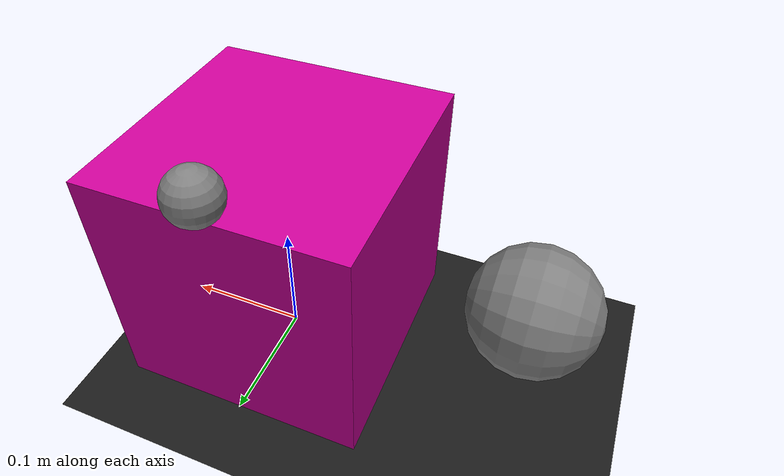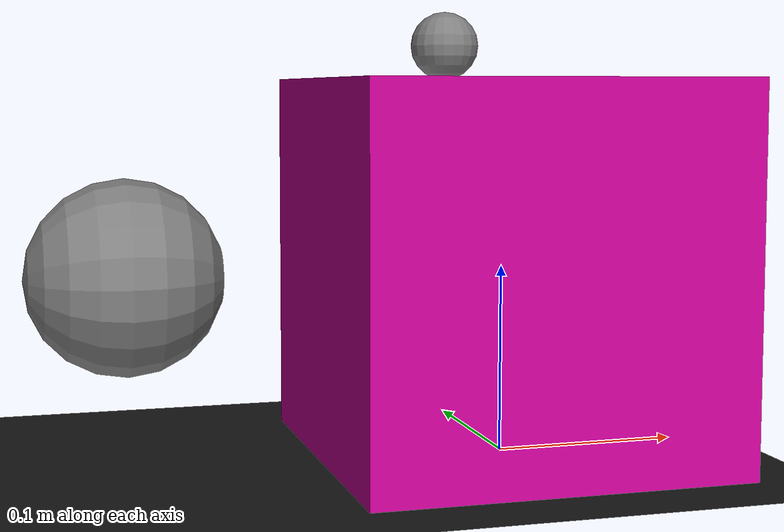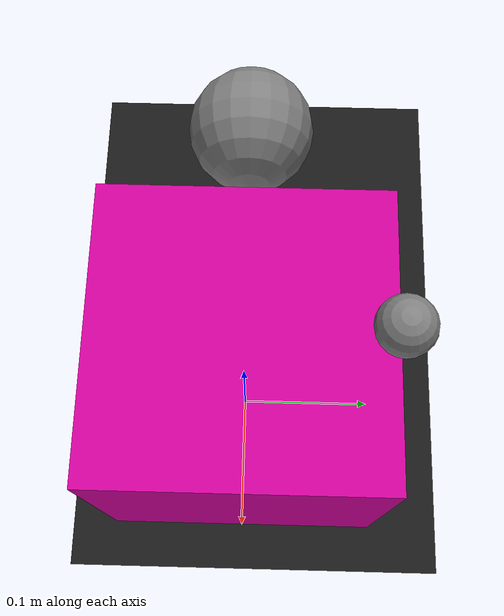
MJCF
<mujoco>

   <option integrator="RK4" timestep="0.001" >
   </option>
   <worldbody>
      <light diffuse=".5 .5 .5" pos="0 0 3" dir="0 0 -1"/>
      <geom type="plane" size="1 1 0.1" rgba=".1 .1 .1 1" friction="1.0 0.005 0001"/>
      <body name="box" pos="0 0 0.1">
         <freejoint name="box"/>
         <geom name="box" type="box" size=".1 .1 .1" rgba=".8 0 .6 1" friction = "1.0 0.005 0001" mass="1.5"/>
         <body name="com_offset" pos="0.0 0.1 0.12">
            <geom name="offset_mass" type="sphere" size="0.02" mass="1.0"/>
         </body>
      </body>
      <body name="pusher" pos="-0.2 0.0 0.1">
         <joint name="pusher_x" type="slide" axis="1 0 0" damping="0.0"/>
         <joint name="pusher_y" type="slide" axis="0 1 0" damping="0.0"/>
         <geom name="pusher" type="sphere" size="0.05" pos="0 0 0" euler="0.0 -90.0 0" friction="1.0 0.005 0001"/>
      </body>
   </worldbody>
   <actuator>
      <general name="push_velocity" joint="box"/>
      <general name="push_angle" joint="box"/>
    </actuator>
</mujoco>
